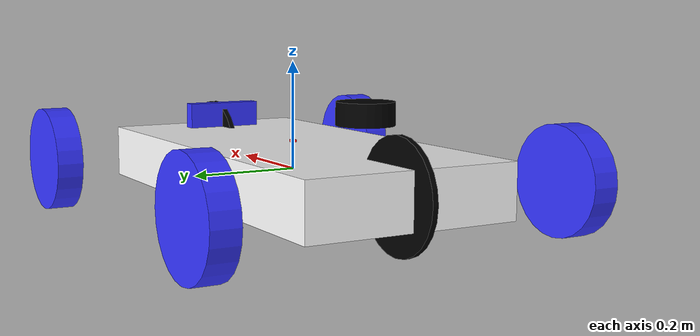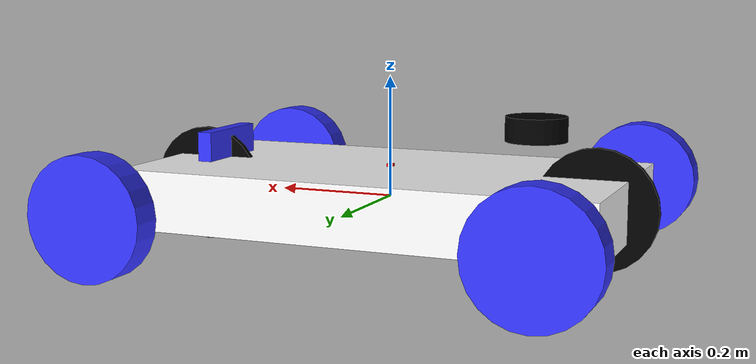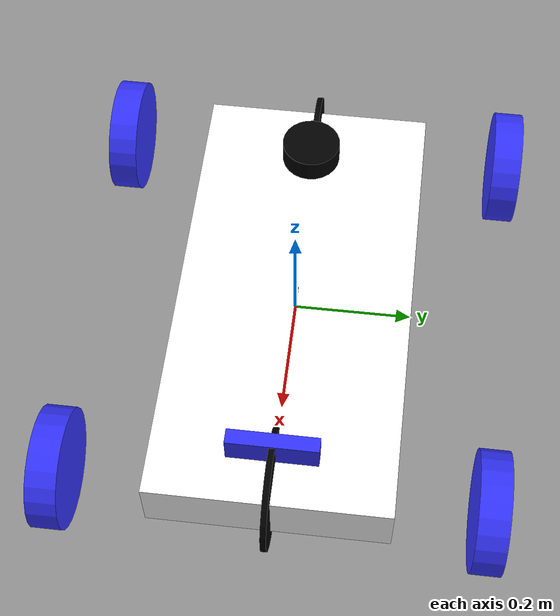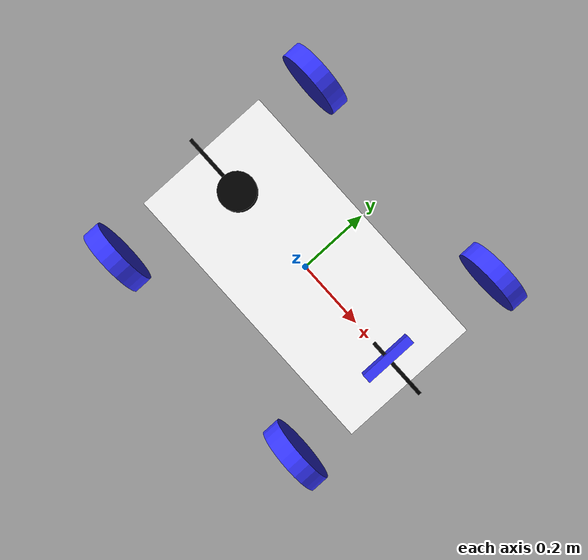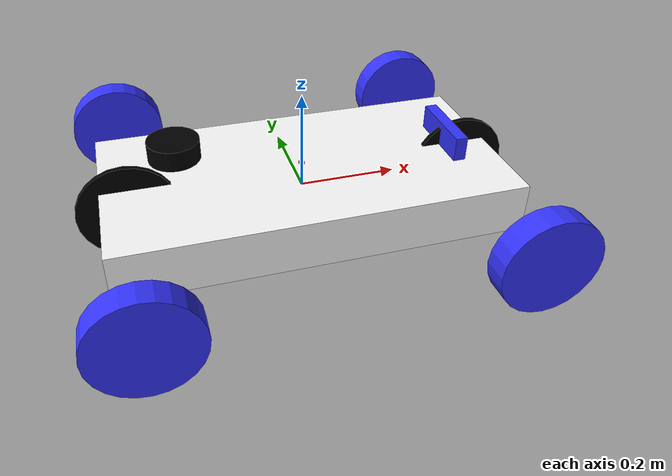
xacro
<?xml version="1.0"?>
<robot xmlns:xacro="http://www.ros.org/wiki/xacro"  name="robot">

    <!-- Example link -->
    <xacro:include filename="ackerman_robot_core.urdf.xacro"/>
    <xacro:include filename="wheel_macros.xacro"/>
    <xacro:include filename="inertial_macros.xacro"/>
    <xacro:include filename="lidar.xacro"/>
    <xacro:include filename="imu.xacro"/>
    <xacro:include filename="properties.xacro"/>
    <xacro:include filename="kinect.xacro"/>

        <!-- Control -->
    <!--xacro:include filename="gazebo_control.xacro"/-->
    <xacro:include filename="ros_control.xacro"/>

</robot>

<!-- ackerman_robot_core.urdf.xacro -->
<robot name="ackrm_robot"
  xmlns:xacro="http://ros.org/wiki/xacro">

  <!--MATERIALS-->

  <!-- XACRO PROPERTIES -->
  <xacro:property name="PI" value="3.1415926535897931"/>
  <xacro:property name="chassis_length" value="0.8" />
  <xacro:property name="chassis_width" value="0.4" />
  <xacro:property name="chassis_heigth" value="0.1" />
  <xacro:property name="chassis_mass" value="${chassis_length*chassis_width*chassis_heigth*500}" />
  <xacro:property name="wheel_radius" value="0.1" />
  <xacro:property name="wheel_heigth" value="0.05" />
  <xacro:property name="wheel_mass" value="${pi*wheel_radius*wheel_radius*wheel_heigth*500}" />

  <!-- XACRO LIBRARIES -->
  <xacro:include filename="wheel_macros.xacro" />

<!-- Example link -->
<link name="base_link">
</link>

<joint name="chassis_joint" type="fixed">
  <parent link="base_link"/>
  <child link="chassis_link"/>
  <origin xyz="0 0 0"/>
</joint>

  <!-- chassis LINK DEFINITION -->
  <link name="chassis_link">
    <visual>
      <geometry>
        <box size="${chassis_length} ${chassis_width} ${chassis_heigth}" />
      </geometry>
      <material name="white" />
    </visual>
    <collision>
      <geometry>
        <box size="${chassis_length} ${chassis_width} ${chassis_heigth}" />
      </geometry>
    </collision>

    <xacro:inertial_box mass="${chassis_mass}" x="${chassis_length}" y="${chassis_width}" z="${chassis_heigth}">
            <origin xyz="0 0 0" rpy="0 0 0"/>
    </xacro:inertial_box>

  </link>

  <!-- VIRTUAL WHEELS-->
  <!-- virtual front wheel -->

  <link name="virtual_front_wheel">
    <visual>
      <origin xyz="0 0 0" rpy="${PI/2} 0 ${PI/2}"/>
      <geometry>
        <cylinder length="0.01" radius="${wheel_radius}"/>
      </geometry>
      <material name="invisible"/>
    </visual>
  </link>

  <joint name="virtual_front_wheel_joint" type="revolute">
    <parent link="chassis_link"/>
    <child link="virtual_front_wheel"/>
    <origin xyz="0.35 0 0" rpy="0 0 ${PI/2}"/>
    <axis xyz="0 0 1"/>
    <limit lower="-${PI/4}" upper="${PI/4}" effort="100.0" velocity="0.0"/>
    <dynamics damping="0.2"/>
  </joint>

  <!-- virtual back wheel -->

  <link name="virtual_rear_wheel">
    <visual>
      <origin xyz="0 0 0" rpy="${PI/2} 0 ${PI/2}"/>
      <geometry>
        <cylinder length="0.01" radius="${wheel_radius}"/>
      </geometry>
      <material name="invisible"/>
    </visual>
  </link>

  <joint name="virtual_rear_wheel_joint" type="continuous">
    <parent link="chassis_link"/>
    <child link="virtual_rear_wheel"/>
    <origin xyz="-0.35 0 0" rpy="0 0 ${PI/2}"/>
    <axis xyz="1 0 0"/>
    <limit effort="100.0" velocity="100.0"/>
    <dynamics damping="0.2"/>
  </joint>

  <!-- WHEELS MACRO CALL -->
  <xacro:cylinder_wheel name="rear_right"
    wr="${wheel_radius}"
    wh="${wheel_heigth}"
    wm="${wheel_mass}"
    parent="chassis_link"
    xpos="-0.35"
    ypos="-0.35"
    mimic="rear"
    axis= "0 1 0"/>

  <xacro:cylinder_wheel name="rear_left"
    wr="${wheel_radius}"
    wh="${wheel_heigth}"
    wm="${wheel_mass}"
    parent="chassis_link"
    xpos="-0.35"
    ypos="0.35"
    mimic="rear"
    axis="0 1 0"/>

  <xacro:cylinder_wheel name="front_right"
    wr="${wheel_radius}"
    wh="${wheel_heigth}"
    wm="${wheel_mass}"
    parent="chassis_link"
    xpos="0.35"
    ypos="0.35"
    mimic="front"
    axis="0 0 1"/>

  <xacro:cylinder_wheel name="front_left"
    wr="${wheel_radius}"
    wh="${wheel_heigth}"
    wm="${wheel_mass}"
    parent="chassis_link"
    xpos="0.35"
    ypos="-0.35"
    mimic="front"
    axis="0 0 1"/>

</robot>

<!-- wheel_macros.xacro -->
<robot name="cylinder_wheel"
  xmlns:xacro="http://www.ros.org/wiki/xacro">

  <xacro:include filename="inertial_macros.xacro" />

  <xacro:macro name="cylinder_wheel" params="name wr wh wm parent xpos ypos mimic axis">
    <link name="${name}_wheel">
      <visual>
        <geometry>
          <cylinder length="${wh}" radius="${wr}" />
        </geometry>
        <origin rpy="1.57 0 0" xyz="0 0 0" />
        <material name="blue" />
      </visual>
      <collision>
        <geometry>
          <cylinder length="${wh}" radius="${wr}" />
        </geometry>
        <origin rpy="1.57 0 0" xyz="0 0 0" />
      </collision>

      <xacro:inertial_cylinder mass='${wm}' length='${wh}' radius='${wr}'>
        <origin rpy="1.57 0 0" xyz="0 0 0" />
      </xacro:inertial_cylinder>

    </link>

    <joint name="${name}_wheel_joint" type="continuous">
      <parent link="${parent}" />
      <child link="${name}_wheel" />
      <origin xyz="${xpos} ${ypos} 0" rpy="0 0 0" />
      <axis xyz="${axis}" rpy="0 0 0" />
      <limit effort="1000" velocity="100" />
      <joint_properties damping="0.0" friction="10.0" />
      <mimic joint="virtual_${mimic}_wheel_joint" multiplier="1.0" offset="0.0"/>
    </joint>

  </xacro:macro>

</robot>

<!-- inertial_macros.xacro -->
<robot xmlns:xacro="http://www.ros.org/wiki/xacro" >

    <!-- Specify some standard inertial calculations https://en.wikipedia.org/wiki/List_of_moments_of_inertia -->
    <!-- These make use of xacro's mathematical functionality -->

    <xacro:macro name="inertial_sphere" params="mass radius *origin">
        <inertial>
            <xacro:insert_block name="origin"/>
            <mass value="${mass}" />
            <inertia ixx="${(2/5) * mass * (radius*radius)}" ixy="0.0" ixz="0.0"
                    iyy="${(2/5) * mass * (radius*radius)}" iyz="0.0"
                    izz="${(2/5) * mass * (radius*radius)}" />
        </inertial>
    </xacro:macro>

    <xacro:macro name="inertial_box" params="mass x y z *origin">
        <inertial>
            <xacro:insert_block name="origin"/>
            <mass value="${mass}" />
            <inertia ixx="${(1/12) * mass * (y*y+z*z)}" ixy="0.0" ixz="0.0"
                    iyy="${(1/12) * mass * (x*x+z*z)}" iyz="0.0"
                    izz="${(1/12) * mass * (x*x+y*y)}" />
        </inertial>
    </xacro:macro>

    <xacro:macro name="inertial_cylinder" params="mass length radius *origin">
        <inertial>
            <xacro:insert_block name="origin"/>
            <mass value="${mass}" />
            <inertia ixx="${(1/12) * mass * (3*radius*radius + length*length)}" ixy="0.0" ixz="0.0"
                    iyy="${(1/12) * mass * (3*radius*radius + length*length)}" iyz="0.0"
                    izz="${(1/2) * mass * (radius*radius)}" />
        </inertial>
    </xacro:macro>
</robot>

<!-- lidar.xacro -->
<robot xmlns:xacro="http://www.ros.org/wiki/xacro">

    <!-- lidar joint -->
    <joint name="laser_joint" type="fixed">
        <parent link="chassis_link"/>
        <child link="laser_frame"/>
        <origin xyz="-0.25 0 0.125" rpy="0 0 0"/>
    </joint>

    <!-- laser_frame -->
    <link name="laser_frame">
        <visual>
            <geometry>
                <cylinder radius="0.05" length="0.04"/>
            </geometry>
            <material name="black"/>
        </visual>
        <collision>
            <geometry>
                <cylinder radius="0.05" length="0.04"/>
            </geometry>
        </collision>
        <xacro:inertial_cylinder mass="0.1" length="0.04" radius="0.05">
            <origin xyz="0 0 0" rpy="0 0 0"/>
        </xacro:inertial_cylinder>
    </link>

    <gazebo reference="laser_frame">
        <material>Gazebo/Black</material>
        <sensor name="laser" type="ray">
            <pose>0 0 0 0 0 0</pose>
            <visualize>false</visualize>
            <update_rate>20</update_rate>
            <ray>
                <scan>
                    <horizontal>
                        <!--samples> is the number of simulated lidar rays to generate per complete laser sweep cycle.-->
                        <samples>360</samples>
                        <!--resolution>: this number is multiplied by samples to determine the number range data points.-->
                        <resolution>1</resolution>
                        <min_angle>-3.14</min_angle>
                        <max_angle>3.14</max_angle>
                    </horizontal>
                </scan>
                <range>
                    <min>0.3</min>
                    <max>16</max>
                    <resolution>0.01</resolution>
                </range>
            </ray>
            <plugin name="laser_controller" filename="libgazebo_ros_ray_sensor.so">
                <ros>
                    <remapping>~/out:=/scan</remapping>
                </ros>
                <output_type>sensor_msgs/LaserScan</output_type>
                <frame_name>laser_frame</frame_name>
            </plugin>
        </sensor>
    </gazebo>

</robot>

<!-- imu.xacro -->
<robot xmlns:xacro="http://www.ros.org/wiki/xacro">

    <!-- Imu_frame -->
    <link name="imu_frame">
        <visual>
            <origin xyz="0 0 0"/>
            <geometry>
                <box size="0.01 0.01 0.005"/>
            </geometry>
            <material name="red"/>
        </visual>
        <xacro:inertial_box mass="0.005" x="0.01" y="0.01" z="0.005">
            <origin xyz="0 0 0" rpy="0 0 0"/>
        </xacro:inertial_box>
        <collision>
            <origin xyz="0 0 0"/>
            <geometry>
                <box size="0.1 0.1 0.01"/>
            </geometry>
        </collision>
    </link>

    <!-- Imu joint -->
    <joint name="imu_joint" type="fixed">
        <parent link="chassis_link"/>
        <child link="imu_frame"/>
        <origin xyz="0 0 0.052" rpy="0 0 0"/>
    </joint>

    <gazebo reference="imu_frame">
        <material>Gazebo/Red</material>
        <gravity>true</gravity>
        <sensor name="imu_sensor" type="imu">
            <always_on>true</always_on>
            <update_rate>20</update_rate>
            <visualize>true</visualize>
            <!--Sensor will be published for the default topic-->
            <topic>__default_topic__</topic>
            <plugin filename="libgazebo_ros_imu_sensor.so" name="imu_plugin">
                <!--Sensor data will be published for the default topic-->
                <topicName>imu</topicName>
                <bodyName>imu_frame</bodyName>
                <updateRateHZ>20.0</updateRateHZ>
                <gaussianNoise>0.0</gaussianNoise>
                <!--Offsets from the reference link reference frame-->
                <xyzOffset>0 0 0</xyzOffset>
                <rpyOffset>0 0 0</rpyOffset>
                <frameName>imu_frame</frameName>
                <!--Sensor doesn't calibrate to the initial position-->
                <!--So world is tajen as reference-->
                <initialOrientationAsReference>false</initialOrientationAsReference>
                <ros>
                    <!--Output topic: scan-->
                    <remapping>~/out:=/imu</remapping>
                </ros>
            </plugin>
            <pose>0 0 0 0 0 0</pose>
        </sensor>
  </gazebo>

</robot>

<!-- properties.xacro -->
<robot xmlns:xacro="http://www.ros.org/wiki/xacro">
    <!-- Color Definitions -->
    <material name="white">
        <color rgba= "1 1 1 1"/>
    </material>

    <material name="orange">
        <color rgba= "1 0.3 0.1 1"/>
    </material>

    <material name="blue">
        <color rgba= "0.2 0.2 1 1"/>
    </material>

    <material name="black">
        <color rgba= "0 0 0 1"/>
    </material>

    <material name="red">
        <color rgba= "1 0 0 1"/>
    </material>

    <gazebo reference="chassis">
        <material>Gazebo/White</material>
    </gazebo>

    <gazebo reference="left_wheel">
        <material>Gazebo/Blue</material>
    </gazebo>

    <gazebo reference="right_wheel">
        <material>Gazebo/Blue</material>
    </gazebo>

    <gazebo reference="caster_wheel">
        <material>Gazebo/Black</material>
        <mu1 value = "0.001" />
        <mu2 value = "0.001" />
    </gazebo>

    <material name="invisible">
        <color rgba="0.0 0.0 0.0 0.0"/>
    </material>

</robot>

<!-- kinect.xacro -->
<robot xmlns:xacro="http://www.ros.org/wiki/xacro">

    <xacro:property name="kinect_link" value="0.05" /> <!-- Size of square 'kinect' box -->

    <joint name="kinect_joint" type="fixed">
        <axis xyz="0 0 0" />
        <origin xyz="${0.3+kinect_link/4} 0 ${0.05+kinect_link/2}" rpy="0 0 0"/>
        <parent link="chassis_link"/>
        <child link="kinect_link"/>
    </joint>

    <!-- kinect -->
    <link name="kinect_link">

        <visual>
            <origin xyz="0 0 0" rpy="0 0 0"/>
            <geometry>
        <box size="${kinect_link/2} ${kinect_link*3} ${kinect_link}"/>
            </geometry>
            <material name="blue"/>
        </visual>

        <collision>
            <origin xyz="0 0 0" rpy="0 0 0"/>
            <geometry>
        <box size="${kinect_link/2} ${kinect_link*3} ${kinect_link}"/>
            </geometry>
        </collision>

        <xacro:inertial_box mass="0.005" x="${kinect_link/2}" y="${kinect_link*3}" z="${kinect_link}">
            <origin xyz="0 0 0" rpy="0 0 0"/>
        </xacro:inertial_box>
    </link>

    <link name="kinect_optical_link"/>
        <joint name="kinect_optical_joint" type="fixed">
        <parent link="kinect_link"/>
        <child link="kinect_optical_link"/>
        <!-- Optical frame: X forward, Y left, Z down -->
        <origin xyz="0 0 0" rpy="-1.5708 0 -1.5708"/> <!-- -90° around X, then -90° around Z -->
    </joint>

    <gazebo reference="kinect_link">
        <material>Gazebo/Blue</material>
        <gravity>true</gravity>

        <sensor name="kinect_camera" type="depth">
            <update_rate>20</update_rate>
            <alwaysOn>true</alwaysOn>

            <camera name="kinect_ir">
                <horizontal_fov>1.047198</horizontal_fov>
                <image>
                    <width>1280</width>
                    <height>720</height>
                    <format>R8G8B8</format>
                </image>
                <clip>
                    <near>0.05</near>
                    <far>16</far>
                </clip>

                <distortion>
                    <k1>0.0</k1>
                    <k2>0.0</k2>
                    <k3>0.0</k3>
                    <p1>0.0</p1>
                    <p2>0.0</p2>
                    <center>0.5 0.5</center>
                </distortion>
            </camera>

            <plugin name="camera_plugin" filename="libgazebo_ros_camera.so">
                <camera_name>kinect_ir</camera_name>
                <frame_name>kinect_optical_link</frame_name>

                <hack_baseline>0.07</hack_baseline>
                <min_depth>0.001</min_depth>
            </plugin>
        </sensor>
    </gazebo>
</robot>
